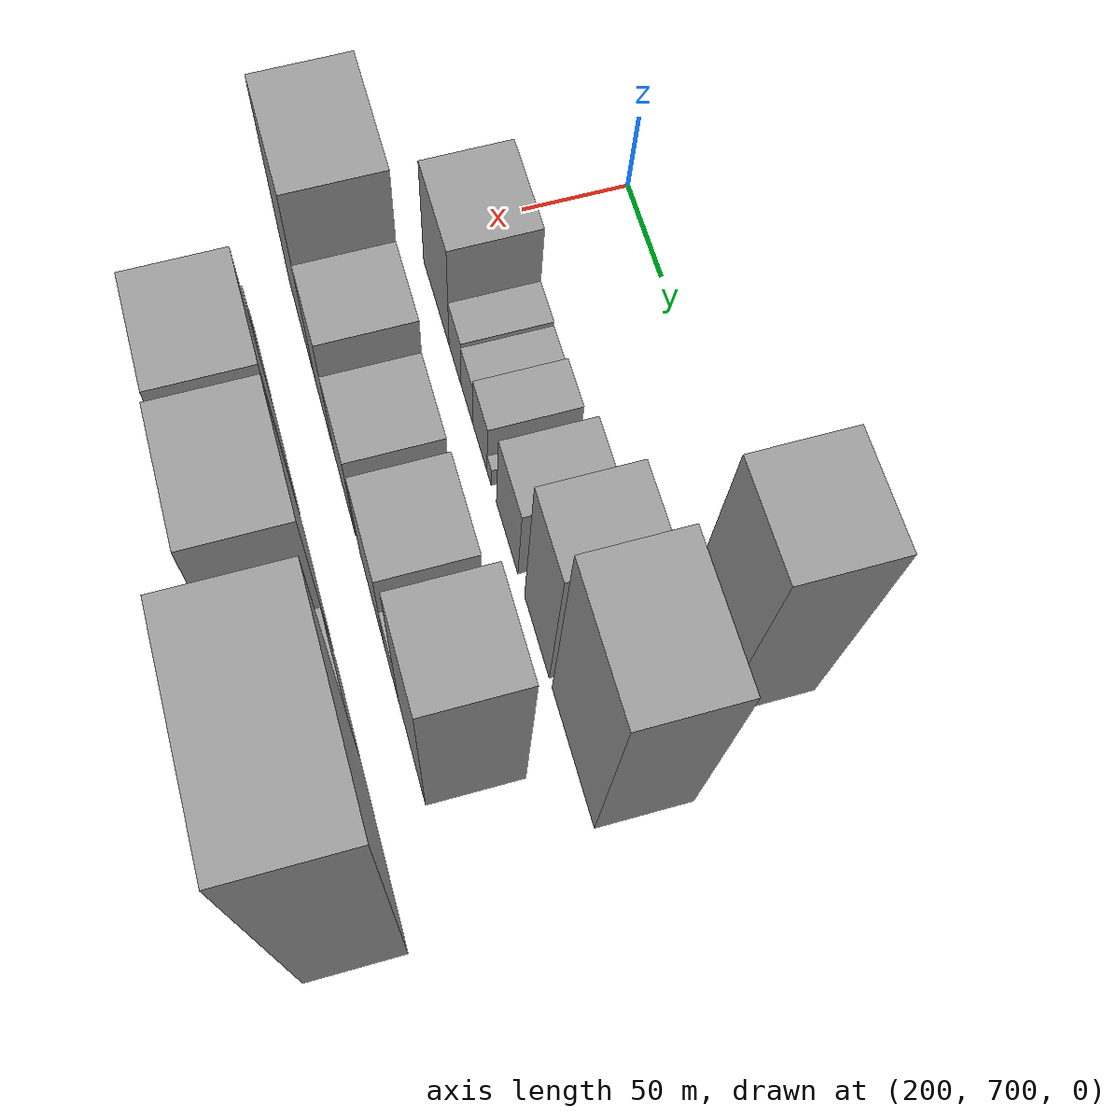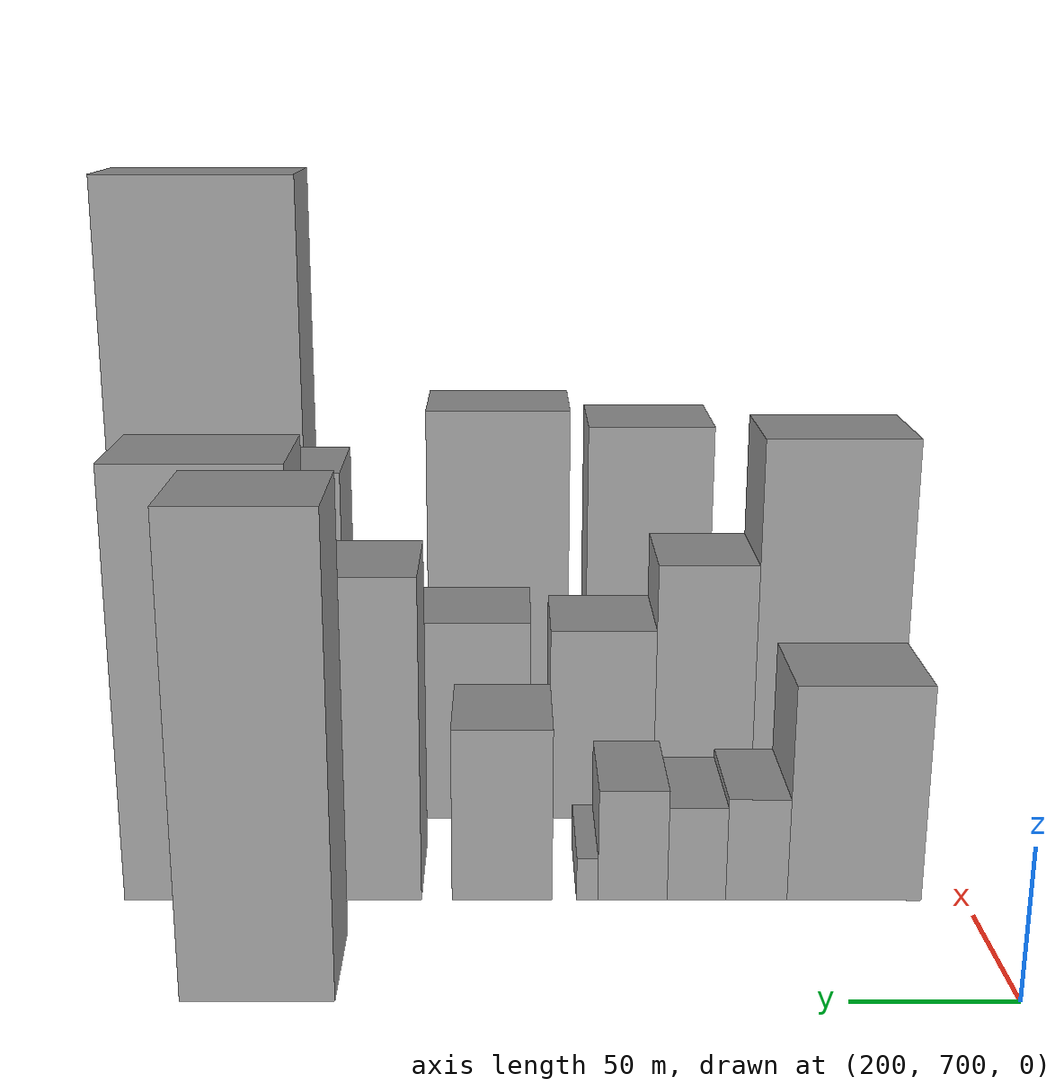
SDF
<sdf version="1.6">
 <world name="default">
  <model name="building_159">
   <static>1</static>
   <pose>220.0000 923.1628 0 0.000000 0.000000 0.000000</pose>
   <link name="link">
    <pose>0 0 75.00 0 0 0</pose>
    <collision name="collision"><geometry><box><size>40.0000 45.5526 150.0000</size></box></geometry></collision>
    <visual name="visual">
     <cast_shadows>0</cast_shadows>
     <geometry><box><size>40.0000 45.5526 150.0000</size></box></geometry>
     <material>
      <script>
       <uri>model://grey_wall/materials/scripts</uri>
       <uri>model://grey_wall/materials/textures</uri>
       <name>vrc/grey_wall</name>
      </script>
     </material>
    </visual>
   </link>
  </model>
  <model name="building_206">
   <static>1</static>
   <pose>280.0000 736.4245 0 0.000000 0.000000 0.000000</pose>
   <link name="link">
    <pose>0 0 37.50 0 0 0</pose>
    <collision name="collision"><geometry><box><size>40.0000 43.9658 75.0000</size></box></geometry></collision>
    <visual name="visual">
     <cast_shadows>0</cast_shadows>
     <geometry><box><size>40.0000 43.9658 75.0000</size></box></geometry>
     <material>
      <script>
       <uri>model://grey_wall/materials/scripts</uri>
       <uri>model://grey_wall/materials/textures</uri>
       <name>vrc/grey_wall</name>
      </script>
     </material>
    </visual>
   </link>
  </model>
  <model name="building_207">
   <static>1</static>
   <pose>280.0000 768.4598 0 0.000000 0.000000 0.000000</pose>
   <link name="link">
    <pose>0 0 18.00 0 0 0</pose>
    <collision name="collision"><geometry><box><size>40.0000 20.1049 36.0000</size></box></geometry></collision>
    <visual name="visual">
     <cast_shadows>0</cast_shadows>
     <geometry><box><size>40.0000 20.1049 36.0000</size></box></geometry>
     <material>
      <script>
       <uri>model://grey_wall/materials/scripts</uri>
       <uri>model://grey_wall/materials/textures</uri>
       <name>vrc/grey_wall</name>
      </script>
     </material>
    </visual>
   </link>
  </model>
  <model name="building_208">
   <static>1</static>
   <pose>280.0000 788.0768 0 0.000000 0.000000 0.000000</pose>
   <link name="link">
    <pose>0 0 16.50 0 0 0</pose>
    <collision name="collision"><geometry><box><size>40.0000 19.1289 33.0000</size></box></geometry></collision>
    <visual name="visual">
     <cast_shadows>0</cast_shadows>
     <geometry><box><size>40.0000 19.1289 33.0000</size></box></geometry>
     <material>
      <script>
       <uri>model://grey_wall/materials/scripts</uri>
       <uri>model://grey_wall/materials/textures</uri>
       <name>vrc/grey_wall</name>
      </script>
     </material>
    </visual>
   </link>
  </model>
  <model name="building_209">
   <static>1</static>
   <pose>280.0000 809.0052 0 0.000000 0.000000 0.000000</pose>
   <link name="link">
    <pose>0 0 19.50 0 0 0</pose>
    <collision name="collision"><geometry><box><size>40.0000 22.7280 39.0000</size></box></geometry></collision>
    <visual name="visual">
     <cast_shadows>0</cast_shadows>
     <geometry><box><size>40.0000 22.7280 39.0000</size></box></geometry>
     <material>
      <script>
       <uri>model://grey_wall/materials/scripts</uri>
       <uri>model://grey_wall/materials/textures</uri>
       <name>vrc/grey_wall</name>
      </script>
     </material>
    </visual>
   </link>
  </model>
  <model name="building_210">
   <static>1</static>
   <pose>280.0000 823.8369 0 0.000000 0.000000 0.000000</pose>
   <link name="link">
    <pose>0 0 7.50 0 0 0</pose>
    <collision name="collision"><geometry><box><size>40.0000 6.9354 15.0000</size></box></geometry></collision>
    <visual name="visual">
     <cast_shadows>0</cast_shadows>
     <geometry><box><size>40.0000 6.9354 15.0000</size></box></geometry>
     <material>
      <script>
       <uri>model://grey_wall/materials/scripts</uri>
       <uri>model://grey_wall/materials/textures</uri>
       <name>vrc/grey_wall</name>
      </script>
     </material>
    </visual>
   </link>
  </model>
  <model name="building_211">
   <static>1</static>
   <pose>280.0000 851.6866 0 0.000000 0.000000 0.000000</pose>
   <link name="link">
    <pose>0 0 30.00 0 0 0</pose>
    <collision name="collision"><geometry><box><size>40.0000 32.7639 60.0000</size></box></geometry></collision>
    <visual name="visual">
     <cast_shadows>0</cast_shadows>
     <geometry><box><size>40.0000 32.7639 60.0000</size></box></geometry>
     <material>
      <script>
       <uri>model://grey_wall/materials/scripts</uri>
       <uri>model://grey_wall/materials/textures</uri>
       <name>vrc/grey_wall</name>
      </script>
     </material>
    </visual>
   </link>
  </model>
  <model name="building_212">
   <static>1</static>
   <pose>280.0000 895.9225 0 0.000000 0.000000 0.000000</pose>
   <link name="link">
    <pose>0 0 55.50 0 0 0</pose>
    <collision name="collision"><geometry><box><size>40.0000 35.7079 111.0000</size></box></geometry></collision>
    <visual name="visual">
     <cast_shadows>0</cast_shadows>
     <geometry><box><size>40.0000 35.7079 111.0000</size></box></geometry>
     <material>
      <script>
       <uri>model://grey_wall/materials/scripts</uri>
       <uri>model://grey_wall/materials/textures</uri>
       <name>vrc/grey_wall</name>
      </script>
     </material>
    </visual>
   </link>
  </model>
  <model name="building_213">
   <static>1</static>
   <pose>280.0000 946.5442 0 0.000000 0.000000 0.000000</pose>
   <link name="link">
    <pose>0 0 73.50 0 0 0</pose>
    <collision name="collision"><geometry><box><size>40.0000 57.5356 147.0000</size></box></geometry></collision>
    <visual name="visual">
     <cast_shadows>0</cast_shadows>
     <geometry><box><size>40.0000 57.5356 147.0000</size></box></geometry>
     <material>
      <script>
       <uri>model://grey_wall/materials/scripts</uri>
       <uri>model://grey_wall/materials/textures</uri>
       <name>vrc/grey_wall</name>
      </script>
     </material>
    </visual>
   </link>
  </model>
  <model name="building_259">
   <static>1</static>
   <pose>340.0000 735.4664 0 0.000000 0.000000 0.000000</pose>
   <link name="link">
    <pose>0 0 70.50 0 0 0</pose>
    <collision name="collision"><geometry><box><size>40.0000 53.1582 141.0000</size></box></geometry></collision>
    <visual name="visual">
     <cast_shadows>0</cast_shadows>
     <geometry><box><size>40.0000 53.1582 141.0000</size></box></geometry>
     <material>
      <script>
       <uri>model://grey_wall/materials/scripts</uri>
       <uri>model://grey_wall/materials/textures</uri>
       <name>vrc/grey_wall</name>
      </script>
     </material>
    </visual>
   </link>
  </model>
  <model name="building_260">
   <static>1</static>
   <pose>340.0000 779.6664 0 0.000000 0.000000 0.000000</pose>
   <link name="link">
    <pose>0 0 48.00 0 0 0</pose>
    <collision name="collision"><geometry><box><size>40.0000 35.2417 96.0000</size></box></geometry></collision>
    <visual name="visual">
     <cast_shadows>0</cast_shadows>
     <geometry><box><size>40.0000 35.2417 96.0000</size></box></geometry>
     <material>
      <script>
       <uri>model://grey_wall/materials/scripts</uri>
       <uri>model://grey_wall/materials/textures</uri>
       <name>vrc/grey_wall</name>
      </script>
     </material>
    </visual>
   </link>
  </model>
  <model name="building_261">
   <static>1</static>
   <pose>340.0000 815.9796 0 0.000000 0.000000 0.000000</pose>
   <link name="link">
    <pose>0 0 36.00 0 0 0</pose>
    <collision name="collision"><geometry><box><size>40.0000 37.3847 72.0000</size></box></geometry></collision>
    <visual name="visual">
     <cast_shadows>0</cast_shadows>
     <geometry><box><size>40.0000 37.3847 72.0000</size></box></geometry>
     <material>
      <script>
       <uri>model://grey_wall/materials/scripts</uri>
       <uri>model://grey_wall/materials/textures</uri>
       <name>vrc/grey_wall</name>
      </script>
     </material>
    </visual>
   </link>
  </model>
  <model name="building_262">
   <static>1</static>
   <pose>340.0000 862.7260 0 0.000000 0.000000 0.000000</pose>
   <link name="link">
    <pose>0 0 37.50 0 0 0</pose>
    <collision name="collision"><geometry><box><size>40.0000 42.1081 75.0000</size></box></geometry></collision>
    <visual name="visual">
     <cast_shadows>0</cast_shadows>
     <geometry><box><size>40.0000 42.1081 75.0000</size></box></geometry>
     <material>
      <script>
       <uri>model://grey_wall/materials/scripts</uri>
       <uri>model://grey_wall/materials/textures</uri>
       <name>vrc/grey_wall</name>
      </script>
     </material>
    </visual>
   </link>
  </model>
  <model name="building_263">
   <static>1</static>
   <pose>340.0000 895.5520 0 0.000000 0.000000 0.000000</pose>
   <link name="link">
    <pose>0 0 21.00 0 0 0</pose>
    <collision name="collision"><geometry><box><size>40.0000 23.5440 42.0000</size></box></geometry></collision>
    <visual name="visual">
     <cast_shadows>0</cast_shadows>
     <geometry><box><size>40.0000 23.5440 42.0000</size></box></geometry>
     <material>
      <script>
       <uri>model://grey_wall/materials/scripts</uri>
       <uri>model://grey_wall/materials/textures</uri>
       <name>vrc/grey_wall</name>
      </script>
     </material>
    </visual>
   </link>
  </model>
  <model name="building_264">
   <static>1</static>
   <pose>340.0000 928.5853 0 0.000000 0.000000 0.000000</pose>
   <link name="link">
    <pose>0 0 64.50 0 0 0</pose>
    <collision name="collision"><geometry><box><size>40.0000 42.5225 129.0000</size></box></geometry></collision>
    <visual name="visual">
     <cast_shadows>0</cast_shadows>
     <geometry><box><size>40.0000 42.5225 129.0000</size></box></geometry>
     <material>
      <script>
       <uri>model://grey_wall/materials/scripts</uri>
       <uri>model://grey_wall/materials/textures</uri>
       <name>vrc/grey_wall</name>
      </script>
     </material>
    </visual>
   </link>
  </model>
  <model name="building_316">
   <static>1</static>
   <pose>400.0000 736.6527 0 0.000000 0.000000 0.000000</pose>
   <link name="link">
    <pose>0 0 12.00 0 0 0</pose>
    <collision name="collision"><geometry><box><size>40.0000 9.6013 24.0000</size></box></geometry></collision>
    <visual name="visual">
     <cast_shadows>0</cast_shadows>
     <geometry><box><size>40.0000 9.6013 24.0000</size></box></geometry>
     <material>
      <script>
       <uri>model://grey_wall/materials/scripts</uri>
       <uri>model://grey_wall/materials/textures</uri>
       <name>vrc/grey_wall</name>
      </script>
     </material>
    </visual>
   </link>
  </model>
  <model name="building_317">
   <static>1</static>
   <pose>400.0000 756.5879 0 0.000000 0.000000 0.000000</pose>
   <link name="link">
    <pose>0 0 28.50 0 0 0</pose>
    <collision name="collision"><geometry><box><size>40.0000 30.2689 57.0000</size></box></geometry></collision>
    <visual name="visual">
     <cast_shadows>0</cast_shadows>
     <geometry><box><size>40.0000 30.2689 57.0000</size></box></geometry>
     <material>
      <script>
       <uri>model://grey_wall/materials/scripts</uri>
       <uri>model://grey_wall/materials/textures</uri>
       <name>vrc/grey_wall</name>
      </script>
     </material>
    </visual>
   </link>
  </model>
  <model name="building_318">
   <static>1</static>
   <pose>400.0000 795.5333 0 0.000000 0.000000 0.000000</pose>
   <link name="link">
    <pose>0 0 66.00 0 0 0</pose>
    <collision name="collision"><geometry><box><size>40.0000 47.6219 132.0000</size></box></geometry></collision>
    <visual name="visual">
     <cast_shadows>0</cast_shadows>
     <geometry><box><size>40.0000 47.6219 132.0000</size></box></geometry>
     <material>
      <script>
       <uri>model://grey_wall/materials/scripts</uri>
       <uri>model://grey_wall/materials/textures</uri>
       <name>vrc/grey_wall</name>
      </script>
     </material>
    </visual>
   </link>
  </model>
  <model name="building_319">
   <static>1</static>
   <pose>400.0000 853.5065 0 0.000000 0.000000 0.000000</pose>
   <link name="link">
    <pose>0 0 69.00 0 0 0</pose>
    <collision name="collision"><geometry><box><size>40.0000 54.3244 138.0000</size></box></geometry></collision>
    <visual name="visual">
     <cast_shadows>0</cast_shadows>
     <geometry><box><size>40.0000 54.3244 138.0000</size></box></geometry>
     <material>
      <script>
       <uri>model://grey_wall/materials/scripts</uri>
       <uri>model://grey_wall/materials/textures</uri>
       <name>vrc/grey_wall</name>
      </script>
     </material>
    </visual>
   </link>
  </model>
  <model name="building_320">
   <static>1</static>
   <pose>400.0000 906.3443 0 0.000000 0.000000 0.000000</pose>
   <link name="link">
    <pose>0 0 34.50 0 0 0</pose>
    <collision name="collision"><geometry><box><size>40.0000 41.3512 69.0000</size></box></geometry></collision>
    <visual name="visual">
     <cast_shadows>0</cast_shadows>
     <geometry><box><size>40.0000 41.3512 69.0000</size></box></geometry>
     <material>
      <script>
       <uri>model://grey_wall/materials/scripts</uri>
       <uri>model://grey_wall/materials/textures</uri>
       <name>vrc/grey_wall</name>
      </script>
     </material>
    </visual>
   </link>
  </model>
  <model name="building_321">
   <static>1</static>
   <pose>400.0000 964.2787 0 0.000000 0.000000 0.000000</pose>
   <link name="link">
    <pose>0 0 112.50 0 0 0</pose>
    <collision name="collision"><geometry><box><size>40.0000 74.5176 225.0000</size></box></geometry></collision>
    <visual name="visual">
     <cast_shadows>0</cast_shadows>
     <geometry><box><size>40.0000 74.5176 225.0000</size></box></geometry>
     <material>
      <script>
       <uri>model://grey_wall/materials/scripts</uri>
       <uri>model://grey_wall/materials/textures</uri>
       <name>vrc/grey_wall</name>
      </script>
     </material>
    </visual>
   </link>
  </model>
 </world>
</sdf>
